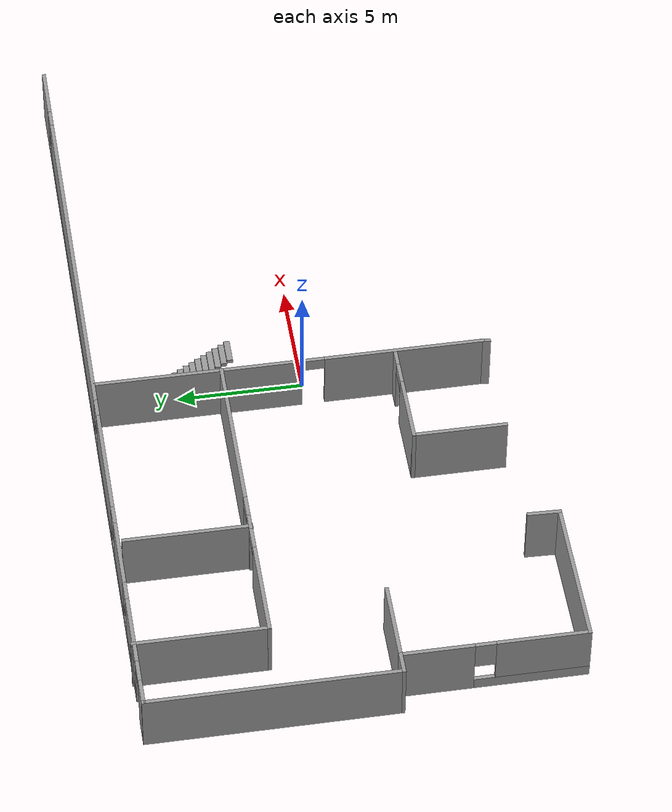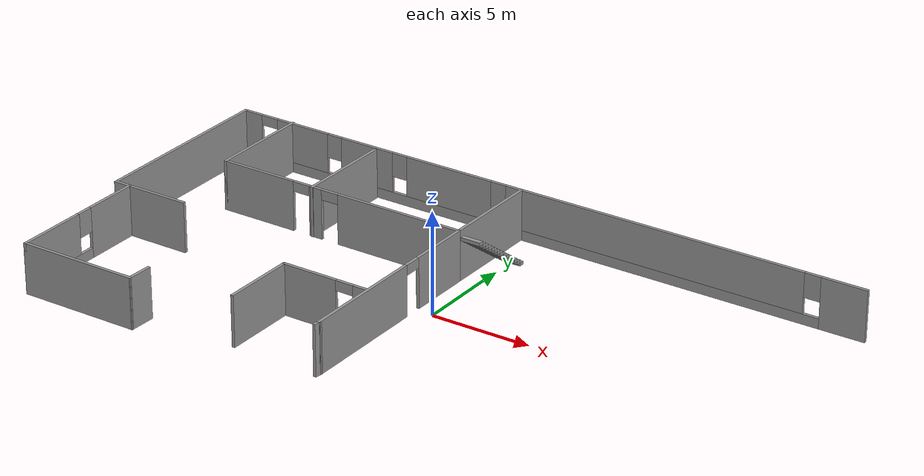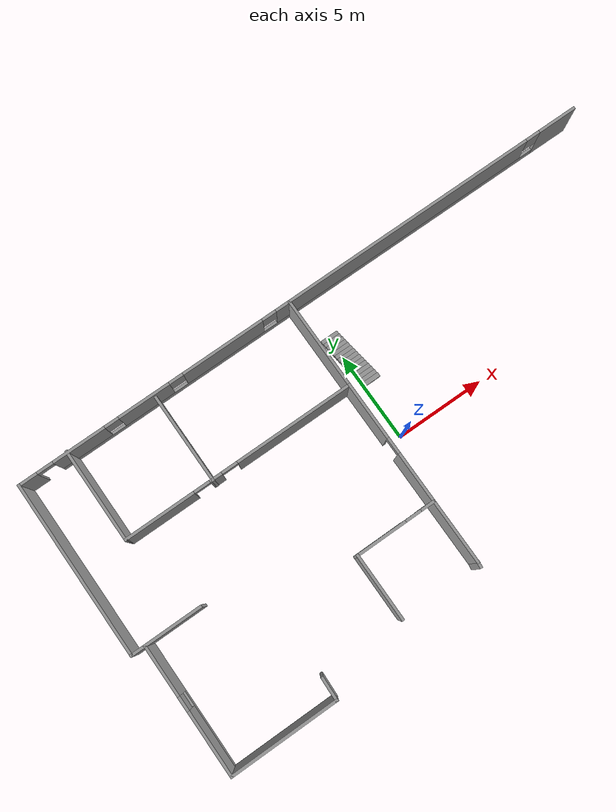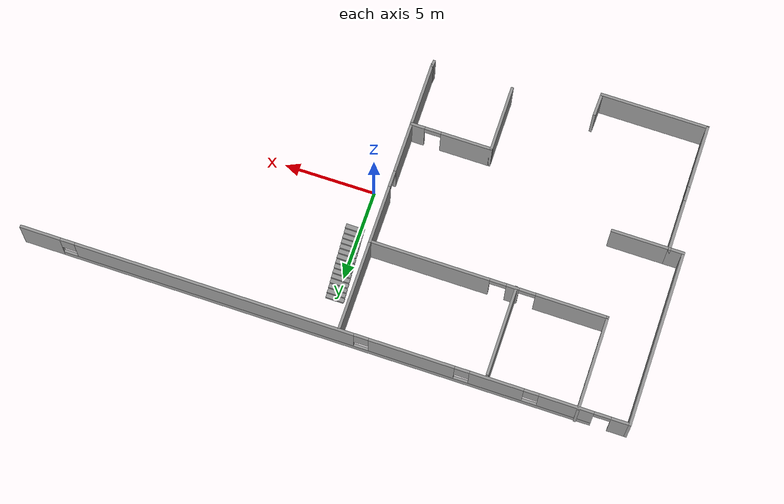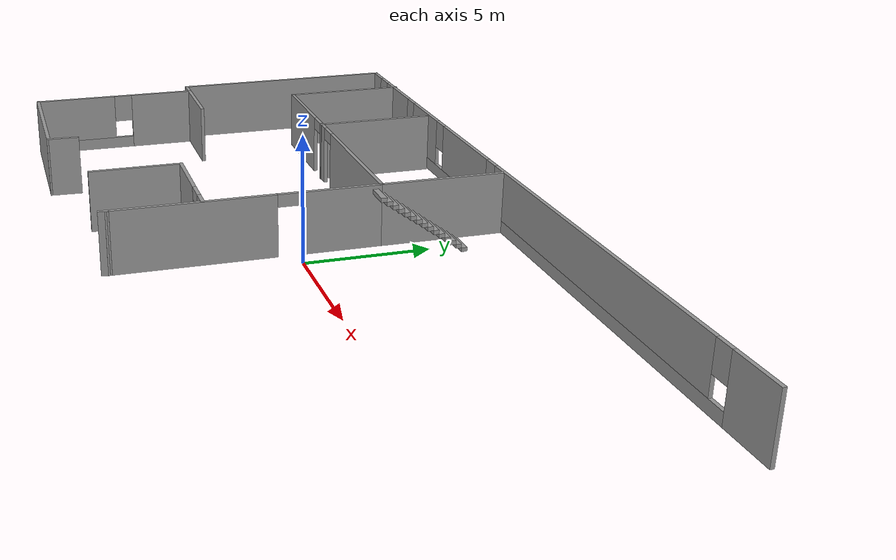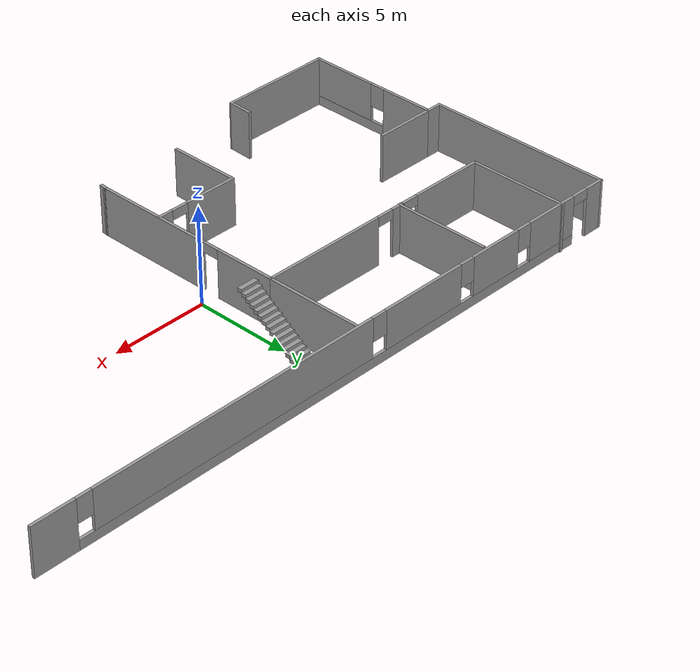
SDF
<sdf version="1.7">
 <model name="Dundler_mifflin">
  <pose>0.058754 0.032766 0 0 -0 0</pose>
  <link name="Stairs_0">
   <visual name="Stairs_0_Visual_0">
    <pose>-0 6.1696 0.083333 0 -0 0</pose>
    <geometry><box><size>1 0.233333 0.166667</size></box></geometry>
    <material>
     <script><uri>file://media/materials/scripts/gazebo.material</uri><name>Gazebo/Grey</name></script>
     <ambient>1 1 1 1</ambient>
    </material>
    <meta><layer>0</layer></meta>
   </visual>
   <collision name="Stairs_0_Collision_0">
    <geometry><box><size>1 0.233333 0.166667</size></box></geometry>
    <pose>-0 6.1696 0.083333 0 -0 0</pose>
   </collision>
   <visual name="Stairs_0_Visual_1">
    <pose>-0 5.93627 0.25 0 -0 0</pose>
    <geometry><box><size>1 0.233333 0.166667</size></box></geometry>
    <material>
     <script><uri>file://media/materials/scripts/gazebo.material</uri><name>Gazebo/Grey</name></script>
     <ambient>1 1 1 1</ambient>
    </material>
    <meta><layer>0</layer></meta>
   </visual>
   <collision name="Stairs_0_Collision_1">
    <geometry><box><size>1 0.233333 0.166667</size></box></geometry>
    <pose>-0 5.93627 0.25 0 -0 0</pose>
   </collision>
   <visual name="Stairs_0_Visual_2">
    <pose>-0 5.70294 0.416667 0 -0 0</pose>
    <geometry><box><size>1 0.233333 0.166667</size></box></geometry>
    <material>
     <script><uri>file://media/materials/scripts/gazebo.material</uri><name>Gazebo/Grey</name></script>
     <ambient>1 1 1 1</ambient>
    </material>
    <meta><layer>0</layer></meta>
   </visual>
   <collision name="Stairs_0_Collision_2">
    <geometry><box><size>1 0.233333 0.166667</size></box></geometry>
    <pose>-0 5.70294 0.416667 0 -0 0</pose>
   </collision>
   <visual name="Stairs_0_Visual_3">
    <pose>-0 5.4696 0.583333 0 -0 0</pose>
    <geometry><box><size>1 0.233333 0.166667</size></box></geometry>
    <material>
     <script><uri>file://media/materials/scripts/gazebo.material</uri><name>Gazebo/Grey</name></script>
     <ambient>1 1 1 1</ambient>
    </material>
    <meta><layer>0</layer></meta>
   </visual>
   <collision name="Stairs_0_Collision_3">
    <geometry><box><size>1 0.233333 0.166667</size></box></geometry>
    <pose>-0 5.4696 0.583333 0 -0 0</pose>
   </collision>
   <visual name="Stairs_0_Visual_4">
    <pose>-0 5.23627 0.75 0 -0 0</pose>
    <geometry><box><size>1 0.233333 0.166667</size></box></geometry>
    <material>
     <script><uri>file://media/materials/scripts/gazebo.material</uri><name>Gazebo/Grey</name></script>
     <ambient>1 1 1 1</ambient>
    </material>
    <meta><layer>0</layer></meta>
   </visual>
   <collision name="Stairs_0_Collision_4">
    <geometry><box><size>1 0.233333 0.166667</size></box></geometry>
    <pose>-0 5.23627 0.75 0 -0 0</pose>
   </collision>
   <visual name="Stairs_0_Visual_5">
    <pose>-0 5.00293 0.916667 0 -0 0</pose>
    <geometry><box><size>1 0.233333 0.166667</size></box></geometry>
    <material>
     <script><uri>file://media/materials/scripts/gazebo.material</uri><name>Gazebo/Grey</name></script>
     <ambient>1 1 1 1</ambient>
    </material>
    <meta><layer>0</layer></meta>
   </visual>
   <collision name="Stairs_0_Collision_5">
    <geometry><box><size>1 0.233333 0.166667</size></box></geometry>
    <pose>-0 5.00293 0.916667 0 -0 0</pose>
   </collision>
   <visual name="Stairs_0_Visual_6">
    <pose>-0 4.7696 1.08333 0 -0 0</pose>
    <geometry><box><size>1 0.233333 0.166667</size></box></geometry>
    <material>
     <script><uri>file://media/materials/scripts/gazebo.material</uri><name>Gazebo/Grey</name></script>
     <ambient>1 1 1 1</ambient>
    </material>
    <meta><layer>0</layer></meta>
   </visual>
   <collision name="Stairs_0_Collision_6">
    <geometry><box><size>1 0.233333 0.166667</size></box></geometry>
    <pose>-0 4.7696 1.08333 0 -0 0</pose>
   </collision>
   <visual name="Stairs_0_Visual_7">
    <pose>-0 4.53627 1.25 0 -0 0</pose>
    <geometry><box><size>1 0.233333 0.166667</size></box></geometry>
    <material>
     <script><uri>file://media/materials/scripts/gazebo.material</uri><name>Gazebo/Grey</name></script>
     <ambient>1 1 1 1</ambient>
    </material>
    <meta><layer>0</layer></meta>
   </visual>
   <collision name="Stairs_0_Collision_7">
    <geometry><box><size>1 0.233333 0.166667</size></box></geometry>
    <pose>-0 4.53627 1.25 0 -0 0</pose>
   </collision>
   <visual name="Stairs_0_Visual_8">
    <pose>-0 4.30293 1.41667 0 -0 0</pose>
    <geometry><box><size>1 0.233333 0.166667</size></box></geometry>
    <material>
     <script><uri>file://media/materials/scripts/gazebo.material</uri><name>Gazebo/Grey</name></script>
     <ambient>1 1 1 1</ambient>
    </material>
    <meta><layer>0</layer></meta>
   </visual>
   <collision name="Stairs_0_Collision_8">
    <geometry><box><size>1 0.233333 0.166667</size></box></geometry>
    <pose>-0 4.30293 1.41667 0 -0 0</pose>
   </collision>
   <visual name="Stairs_0_Visual_9">
    <pose>-0 4.0696 1.58333 0 -0 0</pose>
    <geometry><box><size>1 0.233333 0.166667</size></box></geometry>
    <material>
     <script><uri>file://media/materials/scripts/gazebo.material</uri><name>Gazebo/Grey</name></script>
     <ambient>1 1 1 1</ambient>
    </material>
    <meta><layer>0</layer></meta>
   </visual>
   <collision name="Stairs_0_Collision_9">
    <geometry><box><size>1 0.233333 0.166667</size></box></geometry>
    <pose>-0 4.0696 1.58333 0 -0 0</pose>
   </collision>
   <visual name="Stairs_0_Visual_10">
    <pose>-0 3.83627 1.75 0 -0 0</pose>
    <geometry><box><size>1 0.233333 0.166667</size></box></geometry>
    <material>
     <script><uri>file://media/materials/scripts/gazebo.material</uri><name>Gazebo/Grey</name></script>
     <ambient>1 1 1 1</ambient>
    </material>
    <meta><layer>0</layer></meta>
   </visual>
   <collision name="Stairs_0_Collision_10">
    <geometry><box><size>1 0.233333 0.166667</size></box></geometry>
    <pose>-0 3.83627 1.75 0 -0 0</pose>
   </collision>
   <visual name="Stairs_0_Visual_11">
    <pose>-0 3.60293 1.91667 0 -0 0</pose>
    <geometry><box><size>1 0.233333 0.166667</size></box></geometry>
    <material>
     <script><uri>file://media/materials/scripts/gazebo.material</uri><name>Gazebo/Grey</name></script>
     <ambient>1 1 1 1</ambient>
    </material>
    <meta><layer>0</layer></meta>
   </visual>
   <collision name="Stairs_0_Collision_11">
    <geometry><box><size>1 0.233333 0.166667</size></box></geometry>
    <pose>-0 3.60293 1.91667 0 -0 0</pose>
   </collision>
   <visual name="Stairs_0_Visual_12">
    <pose>-0 3.3696 2.08333 0 -0 0</pose>
    <geometry><box><size>1 0.233333 0.166667</size></box></geometry>
    <material>
     <script><uri>file://media/materials/scripts/gazebo.material</uri><name>Gazebo/Grey</name></script>
     <ambient>1 1 1 1</ambient>
    </material>
    <meta><layer>0</layer></meta>
   </visual>
   <collision name="Stairs_0_Collision_12">
    <geometry><box><size>1 0.233333 0.166667</size></box></geometry>
    <pose>-0 3.3696 2.08333 0 -0 0</pose>
   </collision>
   <visual name="Stairs_0_Visual_13">
    <pose>-0 3.13627 2.25 0 -0 0</pose>
    <geometry><box><size>1 0.233333 0.166667</size></box></geometry>
    <material>
     <script><uri>file://media/materials/scripts/gazebo.material</uri><name>Gazebo/Grey</name></script>
     <ambient>1 1 1 1</ambient>
    </material>
    <meta><layer>0</layer></meta>
   </visual>
   <collision name="Stairs_0_Collision_13">
    <geometry><box><size>1 0.233333 0.166667</size></box></geometry>
    <pose>-0 3.13627 2.25 0 -0 0</pose>
   </collision>
   <visual name="Stairs_0_Visual_14">
    <pose>-0 2.90293 2.41667 0 -0 0</pose>
    <geometry><box><size>1 0.233333 0.166667</size></box></geometry>
    <material>
     <script><uri>file://media/materials/scripts/gazebo.material</uri><name>Gazebo/Grey</name></script>
     <ambient>1 1 1 1</ambient>
    </material>
    <meta><layer>0</layer></meta>
   </visual>
   <collision name="Stairs_0_Collision_14">
    <geometry><box><size>1 0.233333 0.166667</size></box></geometry>
    <pose>-0 2.90293 2.41667 0 -0 0</pose>
   </collision>
  </link>
  <link name="Wall_0">
   <collision name="Wall_0_Collision">
    <geometry><box><size>9.73708 0.15 2.5</size></box></geometry>
    <pose>0 0 1.25 0 -0 0</pose>
   </collision>
   <visual name="Wall_0_Visual">
    <pose>0 0 1.25 0 -0 0</pose>
    <geometry><box><size>9.73708 0.15 2.5</size></box></geometry>
    <material>
     <script><uri>file://media/materials/scripts/gazebo.material</uri><name>Gazebo/Grey</name></script>
     <ambient>1 1 1 1</ambient>
    </material>
    <meta><layer>0</layer></meta>
   </visual>
   <pose>-16.6238 3.54458 0 0 -0 -1.56939</pose>
  </link>
  <link name="Wall_1">
   <collision name="Wall_1_Collision">
    <geometry><box><size>0.906952 0.15 2.5</size></box></geometry>
    <pose>0 0 1.25 0 -0 0</pose>
   </collision>
   <visual name="Wall_1_Visual">
    <pose>0 0 1.25 0 -0 0</pose>
    <geometry><box><size>0.906952 0.15 2.5</size></box></geometry>
    <material>
     <script><uri>file://media/materials/scripts/gazebo.material</uri><name>Gazebo/Grey</name></script>
     <ambient>1 1 1 1</ambient>
    </material>
    <meta><layer>0</layer></meta>
   </visual>
   <pose>-16.2386 -1.29532 0 0 -0 0</pose>
  </link>
  <link name="Wall_10">
   <collision name="Wall_10_Collision">
    <geometry><box><size>5.25 0.15 2.5</size></box></geometry>
    <pose>0 0 1.25 0 -0 0</pose>
   </collision>
   <visual name="Wall_10_Visual">
    <pose>0 0 1.25 0 -0 0</pose>
    <geometry><box><size>5.25 0.15 2.5</size></box></geometry>
    <material>
     <script><uri>file://media/materials/scripts/gazebo.material</uri><name>Gazebo/Grey</name></script>
     <ambient>1 1 1 1</ambient>
    </material>
    <meta><layer>0</layer></meta>
   </visual>
   <pose>-13.8957 5.8475 0 0 -0 -1.5708</pose>
  </link>
  <link name="Wall_11">
   <pose>-7.43051 3.2975 0 0 -0 0</pose>
   <visual name="Wall_11_Visual_0">
    <pose>-4.55815 0 1.25 0 -0 0</pose>
    <geometry><box><size>3.96416 0.15 2.5</size></box></geometry>
    <material>
     <script><uri>file://media/materials/scripts/gazebo.material</uri><name>Gazebo/Grey</name></script>
     <ambient>1 1 1 1</ambient>
    </material>
    <meta><layer>0</layer></meta>
   </visual>
   <collision name="Wall_11_Collision_0">
    <geometry><box><size>3.96416 0.15 2.5</size></box></geometry>
    <pose>-4.55815 0 1.25 0 -0 0</pose>
   </collision>
   <visual name="Wall_11_Visual_1">
    <pose>-1.33225 0 1.25 0 -0 0</pose>
    <geometry><box><size>0.687646 0.15 2.5</size></box></geometry>
    <material>
     <script><uri>file://media/materials/scripts/gazebo.material</uri><name>Gazebo/Grey</name></script>
     <ambient>1 1 1 1</ambient>
    </material>
    <meta><layer>0</layer></meta>
   </visual>
   <collision name="Wall_11_Collision_1">
    <geometry><box><size>0.687646 0.15 2.5</size></box></geometry>
    <pose>-1.33225 0 1.25 0 -0 0</pose>
   </collision>
   <visual name="Wall_11_Visual_2">
    <pose>3.2259 0 1.25 0 -0 0</pose>
    <geometry><box><size>6.62865 0.15 2.5</size></box></geometry>
    <material>
     <script><uri>file://media/materials/scripts/gazebo.material</uri><name>Gazebo/Grey</name></script>
     <ambient>1 1 1 1</ambient>
    </material>
    <meta><layer>0</layer></meta>
   </visual>
   <collision name="Wall_11_Collision_2">
    <geometry><box><size>6.62865 0.15 2.5</size></box></geometry>
    <pose>3.2259 0 1.25 0 -0 0</pose>
   </collision>
   <visual name="Wall_11_Visual_3">
    <pose>-2.12607 0 2.25 0 -0 0</pose>
    <geometry><box><size>0.9 0.15 0.5</size></box></geometry>
    <material>
     <script><uri>file://media/materials/scripts/gazebo.material</uri><name>Gazebo/Grey</name></script>
     <ambient>1 1 1 1</ambient>
    </material>
    <meta><layer>0</layer></meta>
   </visual>
   <collision name="Wall_11_Collision_3">
    <geometry><box><size>0.9 0.15 0.5</size></box></geometry>
    <pose>-2.12607 0 2.25 0 -0 0</pose>
   </collision>
   <visual name="Wall_11_Visual_4">
    <pose>-0.538423 0 2.25 0 -0 0</pose>
    <geometry><box><size>0.9 0.15 0.5</size></box></geometry>
    <material>
     <script><uri>file://media/materials/scripts/gazebo.material</uri><name>Gazebo/Grey</name></script>
     <ambient>1 1 1 1</ambient>
    </material>
    <meta><layer>0</layer></meta>
   </visual>
   <collision name="Wall_11_Collision_4">
    <geometry><box><size>0.9 0.15 0.5</size></box></geometry>
    <pose>-0.538423 0 2.25 0 -0 0</pose>
   </collision>
  </link>
  <link name="Wall_12">
   <pose>-0.955224 -1.88756 0 0 -0 -1.56886</pose>
   <visual name="Wall_12_Visual_0">
    <pose>-3.63589 0 1.25 0 -0 0</pose>
    <geometry><box><size>3.24835 0.15 2.5</size></box></geometry>
    <material>
     <script><uri>file://media/materials/scripts/gazebo.material</uri><name>Gazebo/Grey</name></script>
     <ambient>1 1 1 1</ambient>
    </material>
    <meta><layer>0</layer></meta>
   </visual>
   <collision name="Wall_12_Collision_0">
    <geometry><box><size>3.24835 0.15 2.5</size></box></geometry>
    <pose>-3.63589 0 1.25 0 -0 0</pose>
   </collision>
   <visual name="Wall_12_Visual_1">
    <pose>2.07418 0 1.25 0 -0 0</pose>
    <geometry><box><size>6.37178 0.15 2.5</size></box></geometry>
    <material>
     <script><uri>file://media/materials/scripts/gazebo.material</uri><name>Gazebo/Grey</name></script>
     <ambient>1 1 1 1</ambient>
    </material>
    <meta><layer>0</layer></meta>
   </visual>
   <collision name="Wall_12_Collision_1">
    <geometry><box><size>6.37178 0.15 2.5</size></box></geometry>
    <pose>2.07418 0 1.25 0 -0 0</pose>
   </collision>
   <visual name="Wall_12_Visual_2">
    <pose>-1.56171 0 2.25 0 -0 0</pose>
    <geometry><box><size>0.9 0.15 0.5</size></box></geometry>
    <material>
     <script><uri>file://media/materials/scripts/gazebo.material</uri><name>Gazebo/Grey</name></script>
     <ambient>1 1 1 1</ambient>
    </material>
    <meta><layer>0</layer></meta>
   </visual>
   <collision name="Wall_12_Collision_2">
    <geometry><box><size>0.9 0.15 0.5</size></box></geometry>
    <pose>-1.56171 0 2.25 0 -0 0</pose>
   </collision>
  </link>
  <link name="Wall_14">
   <collision name="Wall_14_Collision">
    <geometry><box><size>0.402154 0.15 2.5</size></box></geometry>
    <pose>0 0 1.25 0 -0 0</pose>
   </collision>
   <visual name="Wall_14_Visual">
    <pose>0 0 1.25 0 -0 0</pose>
    <geometry><box><size>0.402154 0.15 2.5</size></box></geometry>
    <material>
     <script><uri>file://media/materials/scripts/gazebo.material</uri><name>Gazebo/Grey</name></script>
     <ambient>1 1 1 1</ambient>
    </material>
    <meta><layer>0</layer></meta>
   </visual>
   <pose>-0.960057 -7.19781 0 0 -0 1.45242</pose>
  </link>
  <link name="Wall_2">
   <pose>-15.8601 -4.84532 0 0 -0 -1.5708</pose>
   <visual name="Wall_2_Visual_0">
    <pose>-2.1925 0 1.25 0 -0 0</pose>
    <geometry><box><size>2.865 0.15 2.5</size></box></geometry>
    <material>
     <script><uri>file://media/materials/scripts/gazebo.material</uri><name>Gazebo/Grey</name></script>
     <ambient>1 1 1 1</ambient>
    </material>
    <meta><layer>0</layer></meta>
   </visual>
   <collision name="Wall_2_Collision_0">
    <geometry><box><size>2.865 0.15 2.5</size></box></geometry>
    <pose>-2.1925 0 1.25 0 -0 0</pose>
   </collision>
   <visual name="Wall_2_Visual_1">
    <pose>1.4325 0 0.25 0 -0 0</pose>
    <geometry><box><size>4.385 0.15 0.5</size></box></geometry>
    <material>
     <script><uri>file://media/materials/scripts/gazebo.material</uri><name>Gazebo/Grey</name></script>
     <ambient>1 1 1 1</ambient>
    </material>
    <meta><layer>0</layer></meta>
   </visual>
   <collision name="Wall_2_Collision_1">
    <geometry><box><size>4.385 0.15 0.5</size></box></geometry>
    <pose>1.4325 0 0.25 0 -0 0</pose>
   </collision>
   <visual name="Wall_2_Visual_2">
    <pose>1.8325 0 1.5 0 -0 0</pose>
    <geometry><box><size>3.585 0.15 2</size></box></geometry>
    <material>
     <script><uri>file://media/materials/scripts/gazebo.material</uri><name>Gazebo/Grey</name></script>
     <ambient>1 1 1 1</ambient>
    </material>
    <meta><layer>0</layer></meta>
   </visual>
   <collision name="Wall_2_Collision_2">
    <geometry><box><size>3.585 0.15 2</size></box></geometry>
    <pose>1.8325 0 1.5 0 -0 0</pose>
   </collision>
   <visual name="Wall_2_Visual_3">
    <pose>-0.359998 0 1.9 0 -0 0</pose>
    <geometry><box><size>0.8 0.15 1.2</size></box></geometry>
    <material>
     <script><uri>file://media/materials/scripts/gazebo.material</uri><name>Gazebo/Grey</name></script>
     <ambient>1 1 1 1</ambient>
    </material>
    <meta><layer>0</layer></meta>
   </visual>
   <collision name="Wall_2_Collision_3">
    <geometry><box><size>0.8 0.15 1.2</size></box></geometry>
    <pose>-0.359998 0 1.9 0 -0 0</pose>
   </collision>
  </link>
  <link name="Wall_3">
   <collision name="Wall_3_Collision">
    <geometry><box><size>6 0.15 2.5</size></box></geometry>
    <pose>0 0 1.25 0 -0 0</pose>
   </collision>
   <visual name="Wall_3_Visual">
    <pose>0 0 1.25 0 -0 0</pose>
    <geometry><box><size>6 0.15 2.5</size></box></geometry>
    <material>
     <script><uri>file://media/materials/scripts/gazebo.material</uri><name>Gazebo/Grey</name></script>
     <ambient>1 1 1 1</ambient>
    </material>
    <meta><layer>0</layer></meta>
   </visual>
   <pose>-12.9351 -8.39532 0 0 -0 0</pose>
  </link>
  <link name="Wall_30">
   <collision name="Wall_30_Collision">
    <geometry><box><size>5 0.15 2.5</size></box></geometry>
    <pose>0 0 1.25 0 -0 0</pose>
   </collision>
   <visual name="Wall_30_Visual">
    <pose>0 0 1.25 0 -0 0</pose>
    <geometry><box><size>5 0.15 2.5</size></box></geometry>
    <material>
     <script><uri>file://media/materials/scripts/gazebo.material</uri><name>Gazebo/Grey</name></script>
     <ambient>1 1 1 1</ambient>
    </material>
    <meta><layer>0</layer></meta>
   </visual>
   <pose>-8.94957 5.70028 0 0 -0 -1.5708</pose>
  </link>
  <link name="Wall_34">
   <collision name="Wall_34_Collision">
    <geometry><box><size>5.16909 0.15 2.5</size></box></geometry>
    <pose>0 0 1.25 0 -0 0</pose>
   </collision>
   <visual name="Wall_34_Visual">
    <pose>0 0 1.25 0 -0 0</pose>
    <geometry><box><size>5.16909 0.15 2.5</size></box></geometry>
    <material>
     <script><uri>file://media/materials/scripts/gazebo.material</uri><name>Gazebo/Grey</name></script>
     <ambient>1 1 1 1</ambient>
    </material>
    <meta><layer>0</layer></meta>
   </visual>
   <pose>-0.965281 5.80704 0 0 -0 1.5708</pose>
  </link>
  <link name="Wall_37">
   <collision name="Wall_37_Collision">
    <geometry><box><size>3.25 0.15 2.5</size></box></geometry>
    <pose>0 0 1.25 0 -0 0</pose>
   </collision>
   <visual name="Wall_37_Visual">
    <pose>0 0 1.25 0 -0 0</pose>
    <geometry><box><size>3.25 0.15 2.5</size></box></geometry>
    <material>
     <script><uri>file://media/materials/scripts/gazebo.material</uri><name>Gazebo/Grey</name></script>
     <ambient>1 1 1 1</ambient>
    </material>
    <meta><layer>0</layer></meta>
   </visual>
   <pose>-14.3101 -1.29532 0 0 -0 0</pose>
  </link>
  <link name="Wall_4">
   <collision name="Wall_4_Collision">
    <geometry><box><size>1.33091 0.15 2.5</size></box></geometry>
    <pose>0 0 1.25 0 -0 0</pose>
   </collision>
   <visual name="Wall_4_Visual">
    <pose>0 0 1.25 0 -0 0</pose>
    <geometry><box><size>1.33091 0.15 2.5</size></box></geometry>
    <material>
     <script><uri>file://media/materials/scripts/gazebo.material</uri><name>Gazebo/Grey</name></script>
     <ambient>1 1 1 1</ambient>
    </material>
    <meta><layer>0</layer></meta>
   </visual>
   <pose>-9.98985 -7.80487 0 0 -0 1.53655</pose>
  </link>
  <link name="Wall_46">
   <collision name="Wall_46_Collision">
    <geometry><box><size>3.75 0.15 2.5</size></box></geometry>
    <pose>0 0 1.25 0 -0 0</pose>
   </collision>
   <visual name="Wall_46_Visual">
    <pose>0 0 1.25 0 -0 0</pose>
    <geometry><box><size>3.75 0.15 2.5</size></box></geometry>
    <material>
     <script><uri>file://media/materials/scripts/gazebo.material</uri><name>Gazebo/Grey</name></script>
     <ambient>1 1 1 1</ambient>
    </material>
    <meta><layer>0</layer></meta>
   </visual>
   <pose>-5.38704 -5.37969 0 0 -0 1.5708</pose>
  </link>
  <link name="Wall_47">
   <pose>-3.19181 -3.57969 0 0 -0 0</pose>
   <visual name="Wall_47_Visual_0">
    <pose>-0.839551 0 1.25 0 -0 0</pose>
    <geometry><box><size>2.86154 0.15 2.5</size></box></geometry>
    <material>
     <script><uri>file://media/materials/scripts/gazebo.material</uri><name>Gazebo/Grey</name></script>
     <ambient>1 1 1 1</ambient>
    </material>
    <meta><layer>0</layer></meta>
   </visual>
   <collision name="Wall_47_Collision_0">
    <geometry><box><size>2.86154 0.15 2.5</size></box></geometry>
    <pose>-0.839551 0 1.25 0 -0 0</pose>
   </collision>
   <visual name="Wall_47_Visual_1">
    <pose>1.88077 0 1.25 0 -0 0</pose>
    <geometry><box><size>0.779103 0.15 2.5</size></box></geometry>
    <material>
     <script><uri>file://media/materials/scripts/gazebo.material</uri><name>Gazebo/Grey</name></script>
     <ambient>1 1 1 1</ambient>
    </material>
    <meta><layer>0</layer></meta>
   </visual>
   <collision name="Wall_47_Collision_1">
    <geometry><box><size>0.779103 0.15 2.5</size></box></geometry>
    <pose>1.88077 0 1.25 0 -0 0</pose>
   </collision>
   <visual name="Wall_47_Visual_2">
    <pose>1.04122 0 2.25 0 -0 0</pose>
    <geometry><box><size>0.9 0.15 0.5</size></box></geometry>
    <material>
     <script><uri>file://media/materials/scripts/gazebo.material</uri><name>Gazebo/Grey</name></script>
     <ambient>1 1 1 1</ambient>
    </material>
    <meta><layer>0</layer></meta>
   </visual>
   <collision name="Wall_47_Collision_2">
    <geometry><box><size>0.9 0.15 0.5</size></box></geometry>
    <pose>1.04122 0 2.25 0 -0 0</pose>
   </collision>
  </link>
  <link name="Wall_8">
   <pose>-0.030711 8.35511 0 0 -0 -3.14056</pose>
   <visual name="Wall_8_Visual_0">
    <pose>-15.508 0 1.25 0 -0 0</pose>
    <geometry><box><size>2.24053 0.15 2.5</size></box></geometry>
    <material>
     <script><uri>file://media/materials/scripts/gazebo.material</uri><name>Gazebo/Grey</name></script>
     <ambient>1 1 1 1</ambient>
    </material>
    <meta><layer>0</layer></meta>
   </visual>
   <collision name="Wall_8_Collision_0">
    <geometry><box><size>2.24053 0.15 2.5</size></box></geometry>
    <pose>-15.508 0 1.25 0 -0 0</pose>
   </collision>
   <visual name="Wall_8_Visual_1">
    <pose>16.107 0 1.25 0 -0 0</pose>
    <geometry><box><size>1.04256 0.15 2.5</size></box></geometry>
    <material>
     <script><uri>file://media/materials/scripts/gazebo.material</uri><name>Gazebo/Grey</name></script>
     <ambient>1 1 1 1</ambient>
    </material>
    <meta><layer>0</layer></meta>
   </visual>
   <collision name="Wall_8_Collision_1">
    <geometry><box><size>1.04256 0.15 2.5</size></box></geometry>
    <pose>16.107 0 1.25 0 -0 0</pose>
   </collision>
   <visual name="Wall_8_Visual_2">
    <pose>0.148986 0 0.25 0 -0 0</pose>
    <geometry><box><size>29.0734 0.15 0.5</size></box></geometry>
    <material>
     <script><uri>file://media/materials/scripts/gazebo.material</uri><name>Gazebo/Grey</name></script>
     <ambient>1 1 1 1</ambient>
    </material>
    <meta><layer>0</layer></meta>
   </visual>
   <collision name="Wall_8_Collision_2">
    <geometry><box><size>29.0734 0.15 0.5</size></box></geometry>
    <pose>0.148986 0 0.25 0 -0 0</pose>
   </collision>
   <visual name="Wall_8_Visual_3">
    <pose>-5.91685 0 1.5 0 -0 0</pose>
    <geometry><box><size>15.3418 0.15 2</size></box></geometry>
    <material>
     <script><uri>file://media/materials/scripts/gazebo.material</uri><name>Gazebo/Grey</name></script>
     <ambient>1 1 1 1</ambient>
    </material>
    <meta><layer>0</layer></meta>
   </visual>
   <collision name="Wall_8_Collision_3">
    <geometry><box><size>15.3418 0.15 2</size></box></geometry>
    <pose>-5.91685 0 1.5 0 -0 0</pose>
   </collision>
   <visual name="Wall_8_Visual_4">
    <pose>4.88478 0 1.5 0 -0 0</pose>
    <geometry><box><size>4.6615 0.15 2</size></box></geometry>
    <material>
     <script><uri>file://media/materials/scripts/gazebo.material</uri><name>Gazebo/Grey</name></script>
     <ambient>1 1 1 1</ambient>
    </material>
    <meta><layer>0</layer></meta>
   </visual>
   <collision name="Wall_8_Collision_4">
    <geometry><box><size>4.6615 0.15 2</size></box></geometry>
    <pose>4.88478 0 1.5 0 -0 0</pose>
   </collision>
   <visual name="Wall_8_Visual_5">
    <pose>9.47636 0 1.5 0 -0 0</pose>
    <geometry><box><size>2.92166 0.15 2</size></box></geometry>
    <material>
     <script><uri>file://media/materials/scripts/gazebo.material</uri><name>Gazebo/Grey</name></script>
     <ambient>1 1 1 1</ambient>
    </material>
    <meta><layer>0</layer></meta>
   </visual>
   <collision name="Wall_8_Collision_5">
    <geometry><box><size>2.92166 0.15 2</size></box></geometry>
    <pose>9.47636 0 1.5 0 -0 0</pose>
   </collision>
   <visual name="Wall_8_Visual_6">
    <pose>13.2114 0 1.5 0 -0 0</pose>
    <geometry><box><size>2.94852 0.15 2</size></box></geometry>
    <material>
     <script><uri>file://media/materials/scripts/gazebo.material</uri><name>Gazebo/Grey</name></script>
     <ambient>1 1 1 1</ambient>
    </material>
    <meta><layer>0</layer></meta>
   </visual>
   <collision name="Wall_8_Collision_6">
    <geometry><box><size>2.94852 0.15 2</size></box></geometry>
    <pose>13.2114 0 1.5 0 -0 0</pose>
   </collision>
   <visual name="Wall_8_Visual_7">
    <pose>-13.9877 0 1.9 0 -0 0</pose>
    <geometry><box><size>0.8 0.15 1.2</size></box></geometry>
    <material>
     <script><uri>file://media/materials/scripts/gazebo.material</uri><name>Gazebo/Grey</name></script>
     <ambient>1 1 1 1</ambient>
    </material>
    <meta><layer>0</layer></meta>
   </visual>
   <collision name="Wall_8_Collision_7">
    <geometry><box><size>0.8 0.15 1.2</size></box></geometry>
    <pose>-13.9877 0 1.9 0 -0 0</pose>
   </collision>
   <visual name="Wall_8_Visual_8">
    <pose>2.15403 0 1.9 0 -0 0</pose>
    <geometry><box><size>0.8 0.15 1.2</size></box></geometry>
    <material>
     <script><uri>file://media/materials/scripts/gazebo.material</uri><name>Gazebo/Grey</name></script>
     <ambient>1 1 1 1</ambient>
    </material>
    <meta><layer>0</layer></meta>
   </visual>
   <collision name="Wall_8_Collision_8">
    <geometry><box><size>0.8 0.15 1.2</size></box></geometry>
    <pose>2.15403 0 1.9 0 -0 0</pose>
   </collision>
   <visual name="Wall_8_Visual_9">
    <pose>7.61553 0 1.9 0 -0 0</pose>
    <geometry><box><size>0.8 0.15 1.2</size></box></geometry>
    <material>
     <script><uri>file://media/materials/scripts/gazebo.material</uri><name>Gazebo/Grey</name></script>
     <ambient>1 1 1 1</ambient>
    </material>
    <meta><layer>0</layer></meta>
   </visual>
   <collision name="Wall_8_Collision_9">
    <geometry><box><size>0.8 0.15 1.2</size></box></geometry>
    <pose>7.61553 0 1.9 0 -0 0</pose>
   </collision>
   <visual name="Wall_8_Visual_10">
    <pose>11.3372 0 1.9 0 -0 0</pose>
    <geometry><box><size>0.8 0.15 1.2</size></box></geometry>
    <material>
     <script><uri>file://media/materials/scripts/gazebo.material</uri><name>Gazebo/Grey</name></script>
     <ambient>1 1 1 1</ambient>
    </material>
    <meta><layer>0</layer></meta>
   </visual>
   <collision name="Wall_8_Collision_10">
    <geometry><box><size>0.8 0.15 1.2</size></box></geometry>
    <pose>11.3372 0 1.9 0 -0 0</pose>
   </collision>
   <visual name="Wall_8_Visual_11">
    <pose>15.1357 0 2.25 0 -0 0</pose>
    <geometry><box><size>0.9 0.15 0.5</size></box></geometry>
    <material>
     <script><uri>file://media/materials/scripts/gazebo.material</uri><name>Gazebo/Grey</name></script>
     <ambient>1 1 1 1</ambient>
    </material>
    <meta><layer>0</layer></meta>
   </visual>
   <collision name="Wall_8_Collision_11">
    <geometry><box><size>0.9 0.15 0.5</size></box></geometry>
    <pose>15.1357 0 2.25 0 -0 0</pose>
   </collision>
  </link>
  <static>1</static>
 </model>
</sdf>
